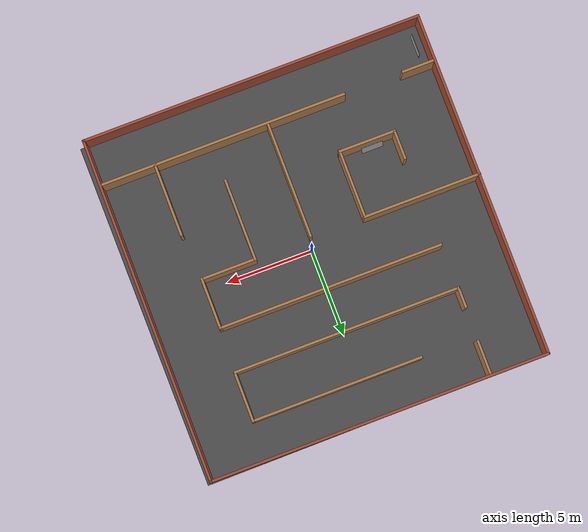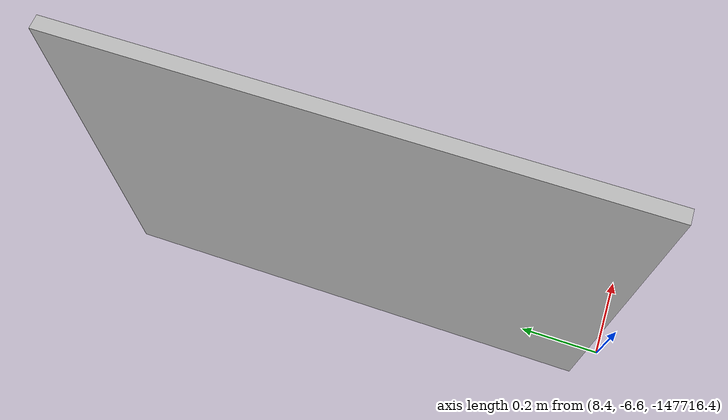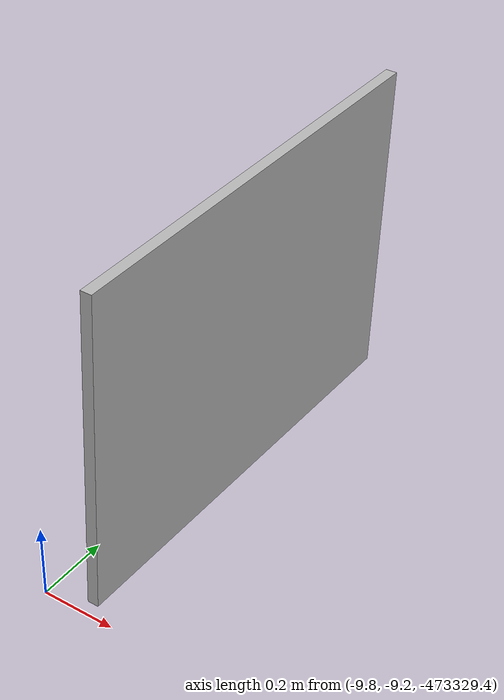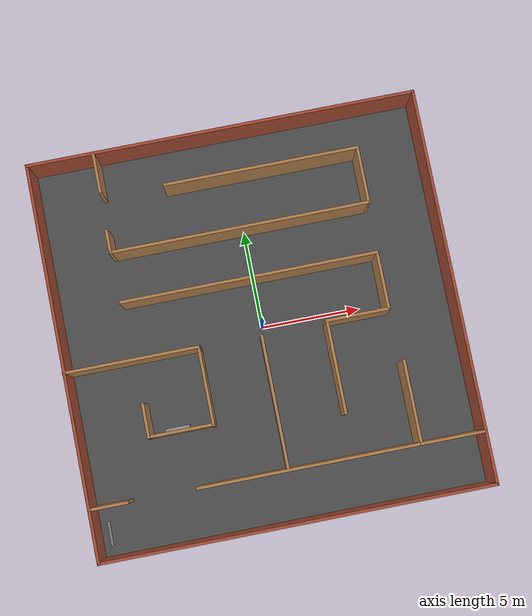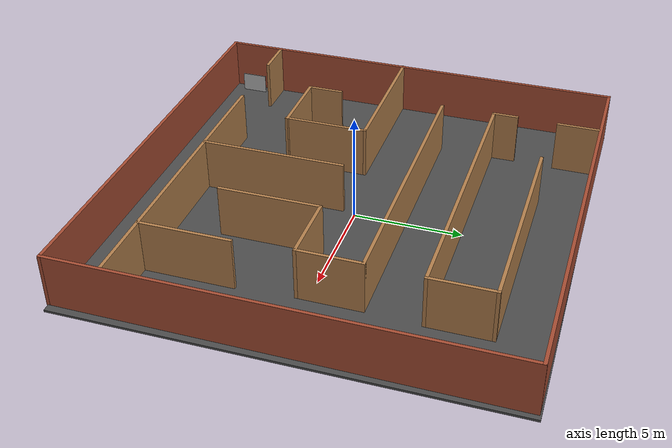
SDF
<sdf version="1.6">
 <world name="default">
  <light name="sun" type="directional">
   <pose>0 0 10 0 -0 0</pose>
   <diffuse>0.8 0.8 0.8 1</diffuse>
   <specular>0.2 0.2 0.2 1</specular>
   <attenuation>
    <range>1000</range>
    <constant>0.9</constant>
    <linear>0.01</linear>
    <quadratic>0.001</quadratic>
   </attenuation>
   <direction>-0.5 0.1 -0.9</direction>
   <spot><inner_angle>0</inner_angle><outer_angle>0</outer_angle><falloff>0</falloff></spot>
  </light>
  <gravity>0 0 -9.8</gravity>
  <magnetic_field>6e-06 2.3e-05 -4.2e-05</magnetic_field>
  <atmosphere type="adiabatic"/>
  <physics name="default_physics" default="0" type="ode">
   <max_step_size>0.001</max_step_size>
   <real_time_factor>1</real_time_factor>
   <real_time_update_rate>1000</real_time_update_rate>
  </physics>
  <scene><ambient>0.4 0.4 0.4 1</ambient><background>0.7 0.7 0.7 1</background><shadows>1</shadows></scene>
  <spherical_coordinates>
   <surface_model>EARTH_WGS84</surface_model>
   <latitude_deg>0</latitude_deg>
   <longitude_deg>0</longitude_deg>
   <elevation>0</elevation>
   <heading_deg>0</heading_deg>
  </spherical_coordinates>
  <model name="Labyrinth_Arena">
   <pose>-0.19256 0.045 0 0 -0 0</pose>
   <link name="Wall_15">
    <collision name="Wall_15_Collision">
     <geometry><box><size>2 0.15 2.5</size></box></geometry>
     <pose>0 0 1.25 0 -0 0</pose>
    </collision>
    <visual name="Wall_15_Visual">
     <pose>0 0 1.25 0 -0 0</pose>
     <geometry><box><size>2 0.15 2.5</size></box></geometry>
     <material>
      <script><uri>file://media/materials/scripts/gazebo.material</uri><name>Gazebo/Wood</name></script>
      <ambient>1 1 1 1</ambient>
     </material>
     <meta><layer>0</layer></meta>
    </visual>
    <pose>-6.44044 8.883 0 0 -0 -1.5708</pose>
   </link>
   <link name="Wall_17">
    <collision name="Wall_17_Collision">
     <geometry><box><size>1.25 0.15 2.5</size></box></geometry>
     <pose>0 0 1.25 0 -0 0</pose>
    </collision>
    <visual name="Wall_17_Visual">
     <pose>0 0 1.25 0 -0 0</pose>
     <geometry><box><size>1.25 0.15 2.5</size></box></geometry>
     <material>
      <script><uri>file://media/materials/scripts/gazebo.material</uri><name>Gazebo/Wood</name></script>
      <ambient>1 1 1 1</ambient>
     </material>
     <meta><layer>0</layer></meta>
    </visual>
    <pose>-6.49444 5.406 0 0 -0 -1.5708</pose>
   </link>
   <link name="Wall_18">
    <collision name="Wall_18_Collision">
     <geometry><box><size>13.1616 0.15 2.5</size></box></geometry>
     <pose>0 0 1.25 0 -0 0</pose>
    </collision>
    <visual name="Wall_18_Visual">
     <pose>0 0 1.25 0 -0 0</pose>
     <geometry><box><size>13.1616 0.15 2.5</size></box></geometry>
     <material>
      <script><uri>file://media/materials/scripts/gazebo.material</uri><name>Gazebo/Wood</name></script>
      <ambient>1 1 1 1</ambient>
     </material>
     <meta><layer>0</layer></meta>
    </visual>
    <pose>0.011295 4.856 0 0 -0 0</pose>
   </link>
   <link name="Wall_19">
    <collision name="Wall_19_Collision">
     <geometry><box><size>2.964 0.15 2.5</size></box></geometry>
     <pose>0 0 1.25 0 -0 0</pose>
    </collision>
    <visual name="Wall_19_Visual">
     <pose>0 0 1.25 0 -0 0</pose>
     <geometry><box><size>2.964 0.15 2.5</size></box></geometry>
     <material>
      <script><uri>file://media/materials/scripts/gazebo.material</uri><name>Gazebo/Wood</name></script>
      <ambient>1 1 1 1</ambient>
     </material>
     <meta><layer>0</layer></meta>
    </visual>
    <pose>6.51703 6.263 0 0 -0 1.5708</pose>
   </link>
   <link name="Wall_20">
    <collision name="Wall_20_Collision">
     <geometry><box><size>9.91162 0.15 2.5</size></box></geometry>
     <pose>0 0 1.25 0 -0 0</pose>
    </collision>
    <visual name="Wall_20_Visual">
     <pose>0 0 1.25 0 -0 0</pose>
     <geometry><box><size>9.91162 0.15 2.5</size></box></geometry>
     <material>
      <script><uri>file://media/materials/scripts/gazebo.material</uri><name>Gazebo/Wood</name></script>
      <ambient>1 1 1 1</ambient>
     </material>
     <meta><layer>0</layer></meta>
    </visual>
    <pose>1.63629 7.67 0 0 -0 3.14159</pose>
   </link>
   <link name="Wall_22">
    <collision name="Wall_22_Collision">
     <geometry><box><size>13 0.15 2.5</size></box></geometry>
     <pose>0 0 1.25 0 -0 0</pose>
    </collision>
    <visual name="Wall_22_Visual">
     <pose>0 0 1.25 0 -0 0</pose>
     <geometry><box><size>13 0.15 2.5</size></box></geometry>
     <material>
      <script><uri>file://media/materials/scripts/gazebo.material</uri><name>Gazebo/Wood</name></script>
      <ambient>1 1 1 1</ambient>
     </material>
     <meta><layer>0</layer></meta>
    </visual>
    <pose>-0.015442 2.318 0 0 -0 0</pose>
   </link>
   <link name="Wall_23">
    <collision name="Wall_23_Collision">
     <geometry><box><size>3 0.15 2.5</size></box></geometry>
     <pose>0 0 1.25 0 -0 0</pose>
    </collision>
    <visual name="Wall_23_Visual">
     <pose>0 0 1.25 0 -0 0</pose>
     <geometry><box><size>3 0.15 2.5</size></box></geometry>
     <material>
      <script><uri>file://media/materials/scripts/gazebo.material</uri><name>Gazebo/Wood</name></script>
      <ambient>1 1 1 1</ambient>
     </material>
     <meta><layer>0</layer></meta>
    </visual>
    <pose>6.40956 0.893 0 0 -0 -1.5708</pose>
   </link>
   <link name="Wall_24">
    <collision name="Wall_24_Collision">
     <geometry><box><size>3.25 0.15 2.5</size></box></geometry>
     <pose>0 0 1.25 0 -0 0</pose>
    </collision>
    <visual name="Wall_24_Visual">
     <pose>0 0 1.25 0 -0 0</pose>
     <geometry><box><size>3.25 0.15 2.5</size></box></geometry>
     <material>
      <script><uri>file://media/materials/scripts/gazebo.material</uri><name>Gazebo/Wood</name></script>
      <ambient>1 1 1 1</ambient>
     </material>
     <meta><layer>0</layer></meta>
    </visual>
    <pose>4.85956 -0.532 0 0 -0 3.14159</pose>
   </link>
   <link name="Wall_25">
    <collision name="Wall_25_Collision">
     <geometry><box><size>4.75 0.15 2.5</size></box></geometry>
     <pose>0 0 1.25 0 -0 0</pose>
    </collision>
    <visual name="Wall_25_Visual">
     <pose>0 0 1.25 0 -0 0</pose>
     <geometry><box><size>4.75 0.15 2.5</size></box></geometry>
     <material>
      <script><uri>file://media/materials/scripts/gazebo.material</uri><name>Gazebo/Wood</name></script>
      <ambient>1 1 1 1</ambient>
     </material>
     <meta><layer>0</layer></meta>
    </visual>
    <pose>3.30956 -2.832 0 0 -0 -1.5708</pose>
   </link>
   <link name="Wall_27">
    <collision name="Wall_27_Collision">
     <geometry><box><size>4.25035 0.15 2.5</size></box></geometry>
     <pose>0 0 1.25 0 -0 0</pose>
    </collision>
    <visual name="Wall_27_Visual">
     <pose>0 0 1.25 0 -0 0</pose>
     <geometry><box><size>4.25035 0.15 2.5</size></box></geometry>
     <material>
      <script><uri>file://media/materials/scripts/gazebo.material</uri><name>Gazebo/Wood</name></script>
      <ambient>1 1 1 1</ambient>
     </material>
     <meta><layer>0</layer></meta>
    </visual>
    <pose>6.61456 -5.26 0 0 -0 -1.5708</pose>
   </link>
   <link name="Wall_28">
    <collision name="Wall_28_Collision">
     <geometry><box><size>11.1965 0.15 2.5</size></box></geometry>
     <pose>0 0 1.25 0 -0 0</pose>
    </collision>
    <visual name="Wall_28_Visual">
     <pose>0 0 1.25 0 -0 0</pose>
     <geometry><box><size>11.1965 0.15 2.5</size></box></geometry>
     <material>
      <script><uri>file://media/materials/scripts/gazebo.material</uri><name>Gazebo/Wood</name></script>
      <ambient>1 1 1 1</ambient>
     </material>
     <meta><layer>0</layer></meta>
    </visual>
    <pose>1.09106 -7.31 0 0 -0 3.14159</pose>
   </link>
   <link name="Wall_30">
    <collision name="Wall_30_Collision">
     <geometry><box><size>3.25 0.15 2.5</size></box></geometry>
     <pose>0 0 1.25 0 -0 0</pose>
    </collision>
    <visual name="Wall_30_Visual">
     <pose>0 0 1.25 0 -0 0</pose>
     <geometry><box><size>3.25 0.15 2.5</size></box></geometry>
     <material>
      <script><uri>file://media/materials/scripts/gazebo.material</uri><name>Gazebo/Wood</name></script>
      <ambient>1 1 1 1</ambient>
     </material>
     <meta><layer>0</layer></meta>
    </visual>
    <pose>8.16456 -7.31 0 0 -0 3.14159</pose>
   </link>
   <link name="Wall_32">
    <collision name="Wall_32_Collision">
     <geometry><box><size>2 0.15 2.5</size></box></geometry>
     <pose>0 0 1.25 0 -0 0</pose>
    </collision>
    <visual name="Wall_32_Visual">
     <pose>0 0 1.25 0 -0 0</pose>
     <geometry><box><size>2 0.15 2.5</size></box></geometry>
     <material>
      <script><uri>file://media/materials/scripts/gazebo.material</uri><name>Gazebo/Wood</name></script>
      <ambient>1 1 1 1</ambient>
     </material>
     <meta><layer>0</layer></meta>
    </visual>
    <pose>-8.85044 -7.313 0 0 -0 0</pose>
   </link>
   <link name="Wall_34">
    <collision name="Wall_34_Collision">
     <geometry><box><size>6.8491 0.15 2.5</size></box></geometry>
     <pose>0 0 1.25 0 -0 0</pose>
    </collision>
    <visual name="Wall_34_Visual">
     <pose>0 0 1.25 0 -0 0</pose>
     <geometry><box><size>6.8491 0.15 2.5</size></box></geometry>
     <material>
      <script><uri>file://media/materials/scripts/gazebo.material</uri><name>Gazebo/Wood</name></script>
      <ambient>1 1 1 1</ambient>
     </material>
     <meta><layer>0</layer></meta>
    </visual>
    <pose>-6.46195 -0.573594 0 0 -0 -0.000774</pose>
   </link>
   <link name="Wall_35">
    <collision name="Wall_35_Collision">
     <geometry><box><size>4 0.15 2.5</size></box></geometry>
     <pose>0 0 1.25 0 -0 0</pose>
    </collision>
    <visual name="Wall_35_Visual">
     <pose>0 0 1.25 0 -0 0</pose>
     <geometry><box><size>4 0.15 2.5</size></box></geometry>
     <material>
      <script><uri>file://media/materials/scripts/gazebo.material</uri><name>Gazebo/Wood</name></script>
      <ambient>1 1 1 1</ambient>
     </material>
     <meta><layer>0</layer></meta>
    </visual>
    <pose>-3.11246 -2.53637 0 0 -0 -1.5708</pose>
   </link>
   <link name="Wall_36">
    <collision name="Wall_36_Collision">
     <geometry><box><size>3.34898 0.15 2.5</size></box></geometry>
     <pose>0 0 1.25 0 -0 0</pose>
    </collision>
    <visual name="Wall_36_Visual">
     <pose>0 0 1.25 0 -0 0</pose>
     <geometry><box><size>3.34898 0.15 2.5</size></box></geometry>
     <material>
      <script><uri>file://media/materials/scripts/gazebo.material</uri><name>Gazebo/Wood</name></script>
      <ambient>1 1 1 1</ambient>
     </material>
     <meta><layer>0</layer></meta>
    </visual>
    <pose>-4.71195 -4.42359 0 0 -0 3.13997</pose>
   </link>
   <link name="Wall_37">
    <collision name="Wall_37_Collision">
     <geometry><box><size>1.75 0.15 2.5</size></box></geometry>
     <pose>0 0 1.25 0 -0 0</pose>
    </collision>
    <visual name="Wall_37_Visual">
     <pose>0 0 1.25 0 -0 0</pose>
     <geometry><box><size>1.75 0.15 2.5</size></box></geometry>
     <material>
      <script><uri>file://media/materials/scripts/gazebo.material</uri><name>Gazebo/Wood</name></script>
      <ambient>1 1 1 1</ambient>
     </material>
     <meta><layer>0</layer></meta>
    </visual>
    <pose>-6.31144 -3.621 0 0 -0 1.5708</pose>
   </link>
   <link name="Wall_39">
    <collision name="Wall_39_Collision">
     <geometry><box><size>6.75 0.15 2.5</size></box></geometry>
     <pose>0 0 1.25 0 -0 0</pose>
    </collision>
    <visual name="Wall_39_Visual">
     <pose>0 0 1.25 0 -0 0</pose>
     <geometry><box><size>6.75 0.15 2.5</size></box></geometry>
     <material>
      <script><uri>file://media/materials/scripts/gazebo.material</uri><name>Gazebo/Wood</name></script>
      <ambient>1 1 1 1</ambient>
     </material>
     <meta><layer>0</layer></meta>
    </visual>
    <pose>0.033533 -3.9605 0 0 -0 -1.5708</pose>
   </link>
   <link name="Wall_4">
    <collision name="Wall_4_Collision">
     <geometry><box><size>19.75 0.15 2.5</size></box></geometry>
     <pose>0 0 1.25 0 -0 0</pose>
    </collision>
    <visual name="Wall_4_Visual">
     <pose>0 0 1.25 0 -0 0</pose>
     <geometry><box><size>19.75 0.15 2.5</size></box></geometry>
     <material>
      <script><uri>file://media/materials/scripts/gazebo.material</uri><name>Gazebo/Bricks</name></script>
      <ambient>1 1 1 1</ambient>
     </material>
     <meta><layer>0</layer></meta>
    </visual>
    <pose>0.011558 -9.925 0 0 -0 3.14159</pose>
   </link>
   <link name="Wall_5">
    <collision name="Wall_5_Collision">
     <geometry><box><size>20 0.15 2.5</size></box></geometry>
     <pose>0 0 1.25 0 -0 0</pose>
    </collision>
    <visual name="Wall_5_Visual">
     <pose>0 0 1.25 0 -0 0</pose>
     <geometry><box><size>20 0.15 2.5</size></box></geometry>
     <material>
      <script><uri>file://media/materials/scripts/gazebo.material</uri><name>Gazebo/Bricks</name></script>
      <ambient>1 1 1 1</ambient>
     </material>
     <meta><layer>0</layer></meta>
    </visual>
    <pose>-9.78844 -0 0 0 -0 1.5708</pose>
   </link>
   <link name="Wall_6">
    <collision name="Wall_6_Collision">
     <geometry><box><size>19.75 0.15 2.5</size></box></geometry>
     <pose>0 0 1.25 0 -0 0</pose>
    </collision>
    <visual name="Wall_6_Visual">
     <pose>0 0 1.25 0 -0 0</pose>
     <geometry><box><size>19.75 0.15 2.5</size></box></geometry>
     <material>
      <script><uri>file://media/materials/scripts/gazebo.material</uri><name>Gazebo/Bricks</name></script>
      <ambient>1 1 1 1</ambient>
     </material>
     <meta><layer>0</layer></meta>
    </visual>
    <pose>0.011558 9.925 0 0 -0 0</pose>
   </link>
   <link name="Wall_8">
    <collision name="Wall_8_Collision">
     <geometry><box><size>20 0.15 2.5</size></box></geometry>
     <pose>0 0 1.25 0 -0 0</pose>
    </collision>
    <visual name="Wall_8_Visual">
     <pose>0 0 1.25 0 -0 0</pose>
     <geometry><box><size>20 0.15 2.5</size></box></geometry>
     <material>
      <script><uri>file://media/materials/scripts/gazebo.material</uri><name>Gazebo/Bricks</name></script>
      <ambient>1 1 1 1</ambient>
     </material>
     <meta><layer>0</layer></meta>
    </visual>
    <pose>9.81156 -0 0 0 -0 -1.5708</pose>
   </link>
   <static>1</static>
  </model>
  <model name="asphalt_plane">
   <static>1</static>
   <link name="link">
    <collision name="collision"><geometry><box><size>20 20 0.1</size></box></geometry></collision>
    <visual name="visual">
     <cast_shadows>0</cast_shadows>
     <geometry><box><size>20 20 0.1</size></box></geometry>
     <material>
      <script>
       <uri>model://asphalt_plane/materials/scripts</uri>
       <uri>model://asphalt_plane/materials/textures</uri>
       <name>vrc/asphalt</name>
      </script>
     </material>
    </visual>
   </link>
   <pose>-0.020563 0.045972 0 0 -0 0.005978</pose>
  </model>
  <model name="wall">
   <link name="link_0">
    <inertial>
     <mass>0.0370544</mass>
     <inertia>
      <ixx>0.0074647</ixx>
      <ixy>0</ixy>
      <ixz>0</ixz>
      <iyy>0.00273036</iyy>
      <iyz>0</iyz>
      <izz>0.00474062</izz>
     </inertia>
    </inertial>
    <visual name="visual">
     <geometry><box><size>0.031883 1.23864 0.93979</size></box></geometry>
     <material>
      <lighting>1</lighting>
      <script>
       <uri>model://wall/materials/scripts</uri>
       <uri>model://wall/materials/textures</uri>
       <name>Labyrinth/Aruco</name>
      </script>
      <shader type="pixel"/>
     </material>
    </visual>
    <collision name="collision">
     <geometry><box><size>0.031883 1.23864 0.93979</size></box></geometry>
     <surface>
      <friction>
       <ode><mu>1</mu><mu2>1</mu2><fdir1>0 0 0</fdir1><slip1>0</slip1><slip2>0</slip2></ode>
       <torsional>
        <coefficient>1</coefficient>
        <patch_radius>0</patch_radius>
        <surface_radius>0</surface_radius>
        <use_patch_radius>1</use_patch_radius>
        <ode><slip>0</slip></ode>
       </torsional>
      </friction>
      <bounce><restitution_coefficient>0</restitution_coefficient><threshold>1e+06</threshold></bounce>
      <contact>
       <collide_without_contact>0</collide_without_contact>
       <collide_without_contact_bitmask>1</collide_without_contact_bitmask>
       <collide_bitmask>1</collide_bitmask>
       <ode>
        <soft_cfm>0</soft_cfm>
        <soft_erp>0.2</soft_erp>
        <kp>1e+13</kp>
        <kd>1</kd>
        <max_vel>0.01</max_vel>
        <min_depth>0</min_depth>
       </ode>
       <bullet>
        <split_impulse>1</split_impulse>
        <split_impulse_penetration_threshold>-0.01</split_impulse_penetration_threshold>
        <soft_cfm>0</soft_cfm>
        <soft_erp>0.2</soft_erp>
        <kp>1e+13</kp>
        <kd>1</kd>
       </bullet>
      </contact>
     </surface>
    </collision>
   </link>
   <static>0</static>
   <pose>-9.721 -8.48357 -473329 -0.000539 0.038765 -1e-05</pose>
  </model>
  <model name="wall_0">
   <link name="link_0">
    <inertial>
     <mass>0.0370544</mass>
     <inertia>
      <ixx>0.0074647</ixx>
      <ixy>0</ixy>
      <ixz>0</ixz>
      <iyy>0.00273036</iyy>
      <iyz>0</iyz>
      <izz>0.00474062</izz>
     </inertia>
    </inertial>
    <visual name="visual">
     <geometry><box><size>0.031883 1.23864 0.93979</size></box></geometry>
     <material>
      <lighting>1</lighting>
      <script>
       <uri>model://wall_2/materials/scripts</uri>
       <uri>model://wall_2/materials/textures</uri>
       <name>Labyrinth/Aruco_2</name>
      </script>
      <shader type="pixel"/>
     </material>
    </visual>
    <collision name="collision">
     <geometry><box><size>0.031883 1.23864 0.93979</size></box></geometry>
     <surface>
      <friction>
       <ode><mu>1</mu><mu2>1</mu2><fdir1>0 0 0</fdir1><slip1>0</slip1><slip2>0</slip2></ode>
       <torsional>
        <coefficient>1</coefficient>
        <patch_radius>0</patch_radius>
        <surface_radius>0</surface_radius>
        <use_patch_radius>1</use_patch_radius>
        <ode><slip>0</slip></ode>
       </torsional>
      </friction>
      <bounce><restitution_coefficient>0</restitution_coefficient><threshold>1e+06</threshold></bounce>
      <contact>
       <collide_without_contact>0</collide_without_contact>
       <collide_without_contact_bitmask>1</collide_without_contact_bitmask>
       <collide_bitmask>1</collide_bitmask>
       <ode>
        <soft_cfm>0</soft_cfm>
        <soft_erp>0.2</soft_erp>
        <kp>1e+13</kp>
        <kd>1</kd>
        <max_vel>0.01</max_vel>
        <min_depth>0</min_depth>
       </ode>
       <bullet>
        <split_impulse>1</split_impulse>
        <split_impulse_penetration_threshold>-0.01</split_impulse_penetration_threshold>
        <soft_cfm>0</soft_cfm>
        <soft_erp>0.2</soft_erp>
        <kp>1e+13</kp>
        <kd>1</kd>
       </bullet>
      </contact>
     </surface>
    </collision>
   </link>
   <static>0</static>
   <pose>-9.4429 -8.66482 0.51989 -8e-06 6e-06 -4e-06</pose>
  </model>
  <model name="wall_1">
   <link name="link_0">
    <inertial>
     <mass>0.0370544</mass>
     <inertia>
      <ixx>0.0074647</ixx>
      <ixy>0</ixy>
      <ixz>0</ixz>
      <iyy>0.00273036</iyy>
      <iyz>0</iyz>
      <izz>0.00474062</izz>
     </inertia>
    </inertial>
    <visual name="visual">
     <geometry><box><size>0.031883 1.23864 0.93979</size></box></geometry>
     <material>
      <lighting>1</lighting>
      <script>
       <uri>model://wall_1/materials/scripts</uri>
       <uri>model://wall_1/materials/textures</uri>
       <name>Labyrinth/Aruco_1</name>
      </script>
      <shader type="pixel"/>
     </material>
    </visual>
    <collision name="collision">
     <geometry><box><size>0.031883 1.23864 0.93979</size></box></geometry>
     <surface>
      <friction>
       <ode><mu>1</mu><mu2>1</mu2><fdir1>0 0 0</fdir1><slip1>0</slip1><slip2>0</slip2></ode>
       <torsional>
        <coefficient>1</coefficient>
        <patch_radius>0</patch_radius>
        <surface_radius>0</surface_radius>
        <use_patch_radius>1</use_patch_radius>
        <ode><slip>0</slip></ode>
       </torsional>
      </friction>
      <bounce><restitution_coefficient>0</restitution_coefficient><threshold>1e+06</threshold></bounce>
      <contact>
       <collide_without_contact>0</collide_without_contact>
       <collide_without_contact_bitmask>1</collide_without_contact_bitmask>
       <collide_bitmask>1</collide_bitmask>
       <ode>
        <soft_cfm>0</soft_cfm>
        <soft_erp>0.2</soft_erp>
        <kp>1e+13</kp>
        <kd>1</kd>
        <max_vel>0.01</max_vel>
        <min_depth>0</min_depth>
       </ode>
       <bullet>
        <split_impulse>1</split_impulse>
        <split_impulse_penetration_threshold>-0.01</split_impulse_penetration_threshold>
        <soft_cfm>0</soft_cfm>
        <soft_erp>0.2</soft_erp>
        <kp>1e+13</kp>
        <kd>1</kd>
       </bullet>
      </contact>
     </surface>
    </collision>
   </link>
   <static>0</static>
   <pose>8.3827 -5.93493 -147716 -0.000528 0.036963 -9e-06</pose>
  </model>
  <model name="wall_2">
   <link name="link_0">
    <inertial>
     <mass>0.0370544</mass>
     <inertia>
      <ixx>0.0074647</ixx>
      <ixy>0</ixy>
      <ixz>0</ixz>
      <iyy>0.00273036</iyy>
      <iyz>0</iyz>
      <izz>0.00474062</izz>
     </inertia>
    </inertial>
    <visual name="visual">
     <geometry><box><size>0.031883 1.23864 0.93979</size></box></geometry>
     <material>
      <lighting>1</lighting>
      <script>
       <uri>model://wall_1/materials/scripts</uri>
       <uri>model://wall_1/materials/textures</uri>
       <name>Labyrinth/Aruco_1</name>
      </script>
      <shader type="pixel"/>
     </material>
    </visual>
    <collision name="collision">
     <geometry><box><size>0.031883 1.23864 0.93979</size></box></geometry>
     <surface>
      <friction>
       <ode><mu>1</mu><mu2>1</mu2><fdir1>0 0 0</fdir1><slip1>0</slip1><slip2>0</slip2></ode>
       <torsional>
        <coefficient>1</coefficient>
        <patch_radius>0</patch_radius>
        <surface_radius>0</surface_radius>
        <use_patch_radius>1</use_patch_radius>
        <ode><slip>0</slip></ode>
       </torsional>
      </friction>
      <bounce><restitution_coefficient>0</restitution_coefficient><threshold>1e+06</threshold></bounce>
      <contact>
       <collide_without_contact>0</collide_without_contact>
       <collide_without_contact_bitmask>1</collide_without_contact_bitmask>
       <collide_bitmask>1</collide_bitmask>
       <ode>
        <soft_cfm>0</soft_cfm>
        <soft_erp>0.2</soft_erp>
        <kp>1e+13</kp>
        <kd>1</kd>
        <max_vel>0.01</max_vel>
        <min_depth>0</min_depth>
       </ode>
       <bullet>
        <split_impulse>1</split_impulse>
        <split_impulse_penetration_threshold>-0.01</split_impulse_penetration_threshold>
        <soft_cfm>0</soft_cfm>
        <soft_erp>0.2</soft_erp>
        <kp>1e+13</kp>
        <kd>1</kd>
       </bullet>
      </contact>
     </surface>
    </collision>
   </link>
   <static>0</static>
   <pose>-5.17899 -4.19934 0.514544 3.14159 -0.188704 1.56917</pose>
  </model>
  <audio><device>default</device></audio>
  <light name="user_point_light_0" type="point">
   <pose>-3.84527 -1.76924 1 0 -0 0</pose>
   <diffuse>0.5 0.5 0.5 1</diffuse>
   <specular>0.1 0.1 0.1 1</specular>
   <attenuation>
    <range>20</range>
    <constant>0.5</constant>
    <linear>0.01</linear>
    <quadratic>0.001</quadratic>
   </attenuation>
   <cast_shadows>0</cast_shadows>
   <direction>0 0 -1</direction>
  </light>
 </world>
</sdf>
